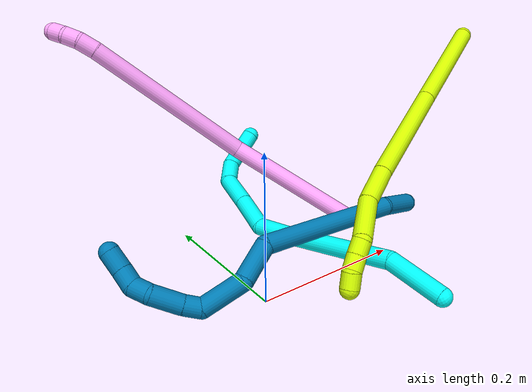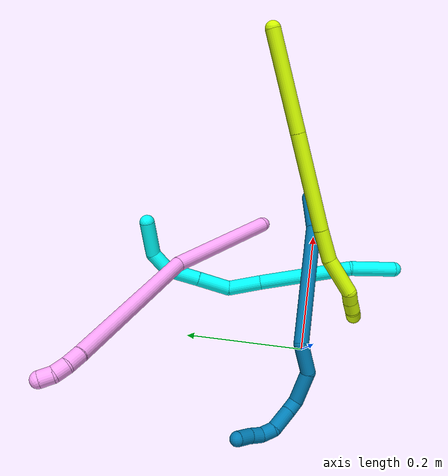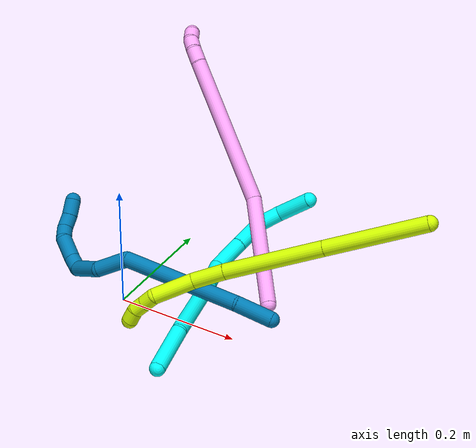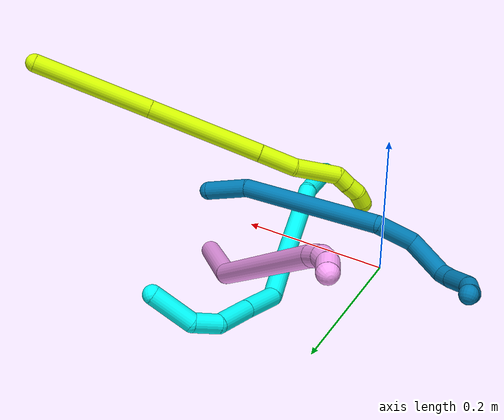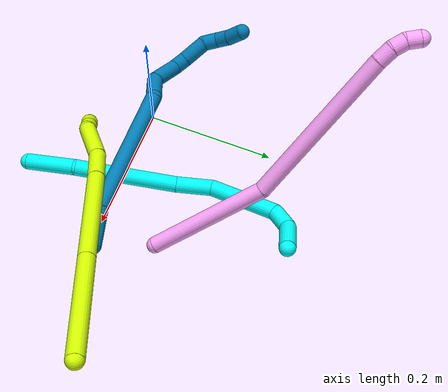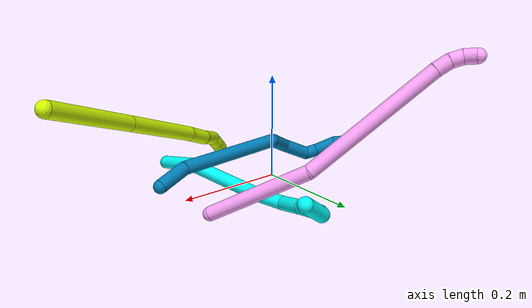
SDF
<sdf version="1.7">
 <world name="default">
  <model name="3">
   <static>0</static>
   <link name="3">
    <collision name="collision-cylinder-e_1_1_4">
     <pose>0.00941 -0.020878 0.018766 0.838635 0.323439 0.145189</pose>
     <geometry><cylinder><radius>0.0125</radius><length>0.059216</length></cylinder></geometry>
     <surface>
      <friction><ode><mu>1.16</mu><mu2>1.16</mu2><slip1>0</slip1><slip2>0</slip2></ode></friction>
      <contact><ode><kp>1e+06</kp><kd>1</kd><max_vel>0</max_vel><min_depth>0.001</min_depth></ode></contact>
     </surface>
    </collision>
    <visual name="visual-cylinder-e_1_1_4">
     <pose>0.00941 -0.020878 0.018766 0.838635 0.323439 0.145189</pose>
     <geometry><cylinder><radius>0.0125</radius><length>0.059216</length></cylinder></geometry>
     <material><ambient>0.003922 1 0.996078 1</ambient></material>
    </visual>
    <collision name="collision-cylinder-e_2_4_5">
     <pose>0.026443 -0.05855 0.039254 1.46858 0.424111 0.383891</pose>
     <geometry><cylinder><radius>0.0125</radius><length>0.037045</length></cylinder></geometry>
     <surface>
      <friction><ode><mu>1.16</mu><mu2>1.16</mu2><slip1>0</slip1><slip2>0</slip2></ode></friction>
      <contact><ode><kp>1e+06</kp><kd>1</kd><max_vel>0</max_vel><min_depth>0.001</min_depth></ode></contact>
     </surface>
    </collision>
    <visual name="visual-cylinder-e_2_4_5">
     <pose>0.026443 -0.05855 0.039254 1.46858 0.424111 0.383891</pose>
     <geometry><cylinder><radius>0.0125</radius><length>0.037045</length></cylinder></geometry>
     <material><ambient>0.003922 1 0.996078 1</ambient></material>
    </visual>
    <collision name="collision-cylinder-e_3_5_6">
     <pose>0.038507 -0.100189 0.030476 1.97067 0.163215 0.245484</pose>
     <geometry><cylinder><radius>0.0125</radius><length>0.054674</length></cylinder></geometry>
     <surface>
      <friction><ode><mu>1.16</mu><mu2>1.16</mu2><slip1>0</slip1><slip2>0</slip2></ode></friction>
      <contact><ode><kp>1e+06</kp><kd>1</kd><max_vel>0</max_vel><min_depth>0.001</min_depth></ode></contact>
     </surface>
    </collision>
    <visual name="visual-cylinder-e_3_5_6">
     <pose>0.038507 -0.100189 0.030476 1.97067 0.163215 0.245484</pose>
     <geometry><cylinder><radius>0.0125</radius><length>0.054674</length></cylinder></geometry>
     <material><ambient>0.003922 1 0.996078 1</ambient></material>
    </visual>
    <collision name="collision-cylinder-e_4_6_7">
     <pose>0.047249 -0.151122 0.009818 1.94211 0.152417 0.222422</pose>
     <geometry><cylinder><radius>0.0125</radius><length>0.056647</length></cylinder></geometry>
     <surface>
      <friction><ode><mu>1.16</mu><mu2>1.16</mu2><slip1>0</slip1><slip2>0</slip2></ode></friction>
      <contact><ode><kp>1e+06</kp><kd>1</kd><max_vel>0</max_vel><min_depth>0.001</min_depth></ode></contact>
     </surface>
    </collision>
    <visual name="visual-cylinder-e_4_6_7">
     <pose>0.047249 -0.151122 0.009818 1.94211 0.152417 0.222422</pose>
     <geometry><cylinder><radius>0.0125</radius><length>0.056647</length></cylinder></geometry>
     <material><ambient>0.003922 1 0.996078 1</ambient></material>
    </visual>
    <collision name="collision-cylinder-e_5_7_8">
     <pose>0.05124 -0.195044 -0.022272 2.45888 -0.010934 -0.030775</pose>
     <geometry><cylinder><radius>0.0125</radius><length>0.05654</length></cylinder></geometry>
     <surface>
      <friction><ode><mu>1.16</mu><mu2>1.16</mu2><slip1>0</slip1><slip2>0</slip2></ode></friction>
      <contact><ode><kp>1e+06</kp><kd>1</kd><max_vel>0</max_vel><min_depth>0.001</min_depth></ode></contact>
     </surface>
    </collision>
    <visual name="visual-cylinder-e_5_7_8">
     <pose>0.05124 -0.195044 -0.022272 2.45888 -0.010934 -0.030775</pose>
     <geometry><cylinder><radius>0.0125</radius><length>0.05654</length></cylinder></geometry>
     <material><ambient>0.003922 1 0.996078 1</ambient></material>
    </visual>
    <collision name="collision-cylinder-e_6_8_9">
     <pose>0.056201 -0.259537 -0.106948 2.50217 0.067301 0.202664</pose>
     <geometry><cylinder><radius>0.0125</radius><length>0.156735</length></cylinder></geometry>
     <surface>
      <friction><ode><mu>1.16</mu><mu2>1.16</mu2><slip1>0</slip1><slip2>0</slip2></ode></friction>
      <contact><ode><kp>1e+06</kp><kd>1</kd><max_vel>0</max_vel><min_depth>0.001</min_depth></ode></contact>
     </surface>
    </collision>
    <visual name="visual-cylinder-e_6_8_9">
     <pose>0.056201 -0.259537 -0.106948 2.50217 0.067301 0.202664</pose>
     <geometry><cylinder><radius>0.0125</radius><length>0.156735</length></cylinder></geometry>
     <material><ambient>0.003922 1 0.996078 1</ambient></material>
    </visual>
    <collision name="collision-cylinder-e_7_9_2">
     <pose>0.060324 -0.339101 -0.191642 2.15909 -0.028998 -0.054192</pose>
     <geometry><cylinder><radius>0.0125</radius><length>0.079144</length></cylinder></geometry>
     <surface>
      <friction><ode><mu>1.16</mu><mu2>1.16</mu2><slip1>0</slip1><slip2>0</slip2></ode></friction>
      <contact><ode><kp>1e+06</kp><kd>1</kd><max_vel>0</max_vel><min_depth>0.001</min_depth></ode></contact>
     </surface>
    </collision>
    <visual name="visual-cylinder-e_7_9_2">
     <pose>0.060324 -0.339101 -0.191642 2.15909 -0.028998 -0.054192</pose>
     <geometry><cylinder><radius>0.0125</radius><length>0.079144</length></cylinder></geometry>
     <material><ambient>0.003922 1 0.996078 1</ambient></material>
    </visual>
    <collision name="collision-sphere-2">
     <pose>0.059177 -0.372006 -0.213592 0 -0 0</pose>
     <geometry><sphere><radius>0.0125</radius></sphere></geometry>
     <surface>
      <friction><ode><mu>1.16</mu><mu2>1.16</mu2><slip1>0</slip1><slip2>0</slip2></ode></friction>
      <contact><ode><kp>1e+06</kp><kd>1</kd><max_vel>0</max_vel><min_depth>0.001</min_depth></ode></contact>
     </surface>
    </collision>
    <visual name="visual-sphere-2">
     <pose>0.059177 -0.372006 -0.213592 0 -0 0</pose>
     <geometry><sphere><radius>0.0125</radius></sphere></geometry>
     <material><ambient>0.003922 1 0.996078 1</ambient></material>
    </visual>
    <collision name="collision-sphere-9">
     <pose>0.061472 -0.306195 -0.169691 0 -0 0</pose>
     <geometry><sphere><radius>0.0125</radius></sphere></geometry>
     <surface>
      <friction><ode><mu>1.16</mu><mu2>1.16</mu2><slip1>0</slip1><slip2>0</slip2></ode></friction>
      <contact><ode><kp>1e+06</kp><kd>1</kd><max_vel>0</max_vel><min_depth>0.001</min_depth></ode></contact>
     </surface>
    </collision>
    <visual name="visual-sphere-9">
     <pose>0.061472 -0.306195 -0.169691 0 -0 0</pose>
     <geometry><sphere><radius>0.0125</radius></sphere></geometry>
     <material><ambient>0.003922 1 0.996078 1</ambient></material>
    </visual>
    <collision name="collision-sphere-4">
     <pose>0.01882 -0.041757 0.037532 0 -0 0</pose>
     <geometry><sphere><radius>0.0125</radius></sphere></geometry>
     <surface>
      <friction><ode><mu>1.16</mu><mu2>1.16</mu2><slip1>0</slip1><slip2>0</slip2></ode></friction>
      <contact><ode><kp>1e+06</kp><kd>1</kd><max_vel>0</max_vel><min_depth>0.001</min_depth></ode></contact>
     </surface>
    </collision>
    <visual name="visual-sphere-4">
     <pose>0.01882 -0.041757 0.037532 0 -0 0</pose>
     <geometry><sphere><radius>0.0125</radius></sphere></geometry>
     <material><ambient>0.003922 1 0.996078 1</ambient></material>
    </visual>
    <collision name="collision-sphere-1">
     <geometry><sphere><radius>0.0125</radius></sphere></geometry>
     <surface>
      <friction><ode><mu>1.16</mu><mu2>1.16</mu2><slip1>0</slip1><slip2>0</slip2></ode></friction>
      <contact><ode><kp>1e+06</kp><kd>1</kd><max_vel>0</max_vel><min_depth>0.001</min_depth></ode></contact>
     </surface>
    </collision>
    <visual name="visual-sphere-1">
     <geometry><sphere><radius>0.0125</radius></sphere></geometry>
     <material><ambient>0.003922 1 0.996078 1</ambient></material>
    </visual>
    <collision name="collision-sphere-8">
     <pose>0.050931 -0.212878 -0.044205 0 -0 0</pose>
     <geometry><sphere><radius>0.0125</radius></sphere></geometry>
     <surface>
      <friction><ode><mu>1.16</mu><mu2>1.16</mu2><slip1>0</slip1><slip2>0</slip2></ode></friction>
      <contact><ode><kp>1e+06</kp><kd>1</kd><max_vel>0</max_vel><min_depth>0.001</min_depth></ode></contact>
     </surface>
    </collision>
    <visual name="visual-sphere-8">
     <pose>0.050931 -0.212878 -0.044205 0 -0 0</pose>
     <geometry><sphere><radius>0.0125</radius></sphere></geometry>
     <material><ambient>0.003922 1 0.996078 1</ambient></material>
    </visual>
    <collision name="collision-sphere-5">
     <pose>0.034065 -0.075344 0.040977 0 -0 0</pose>
     <geometry><sphere><radius>0.0125</radius></sphere></geometry>
     <surface>
      <friction><ode><mu>1.16</mu><mu2>1.16</mu2><slip1>0</slip1><slip2>0</slip2></ode></friction>
      <contact><ode><kp>1e+06</kp><kd>1</kd><max_vel>0</max_vel><min_depth>0.001</min_depth></ode></contact>
     </surface>
    </collision>
    <visual name="visual-sphere-5">
     <pose>0.034065 -0.075344 0.040977 0 -0 0</pose>
     <geometry><sphere><radius>0.0125</radius></sphere></geometry>
     <material><ambient>0.003922 1 0.996078 1</ambient></material>
    </visual>
    <collision name="collision-sphere-6">
     <pose>0.042949 -0.125035 0.019975 0 -0 0</pose>
     <geometry><sphere><radius>0.0125</radius></sphere></geometry>
     <surface>
      <friction><ode><mu>1.16</mu><mu2>1.16</mu2><slip1>0</slip1><slip2>0</slip2></ode></friction>
      <contact><ode><kp>1e+06</kp><kd>1</kd><max_vel>0</max_vel><min_depth>0.001</min_depth></ode></contact>
     </surface>
    </collision>
    <visual name="visual-sphere-6">
     <pose>0.042949 -0.125035 0.019975 0 -0 0</pose>
     <geometry><sphere><radius>0.0125</radius></sphere></geometry>
     <material><ambient>0.003922 1 0.996078 1</ambient></material>
    </visual>
    <collision name="collision-sphere-7">
     <pose>0.051549 -0.177209 -0.00034 0 -0 0</pose>
     <geometry><sphere><radius>0.0125</radius></sphere></geometry>
     <surface>
      <friction><ode><mu>1.16</mu><mu2>1.16</mu2><slip1>0</slip1><slip2>0</slip2></ode></friction>
      <contact><ode><kp>1e+06</kp><kd>1</kd><max_vel>0</max_vel><min_depth>0.001</min_depth></ode></contact>
     </surface>
    </collision>
    <visual name="visual-sphere-7">
     <pose>0.051549 -0.177209 -0.00034 0 -0 0</pose>
     <geometry><sphere><radius>0.0125</radius></sphere></geometry>
     <material><ambient>0.003922 1 0.996078 1</ambient></material>
    </visual>
    <inertial>
     <pose>0.045598 -0.191975 -0.056802 0 -0 0</pose>
     <mass>0.5</mass>
     <inertia>
      <ixx>0.000516</ixx>
      <ixy>0</ixy>
      <ixz>0</ixz>
      <iyy>-0.000242</iyy>
      <iyz>0</iyz>
      <izz>0.000241</izz>
     </inertia>
    </inertial>
   </link>
   <pose>0.173301 0.285597 0.084784 2.33523 -0.631965 -2.90125</pose>
  </model>
  <model name="4">
   <static>0</static>
   <link name="4">
    <collision name="collision-cylinder-e_1_1_4">
     <pose>-0.030344 0.01037 0.087829 -0.117524 -0.330524 0.019623</pose>
     <geometry><cylinder><radius>0.0125</radius><length>0.186999</length></cylinder></geometry>
     <surface>
      <friction><ode><mu>1.16</mu><mu2>1.16</mu2><slip1>0</slip1><slip2>0</slip2></ode></friction>
      <contact><ode><kp>1e+06</kp><kd>1</kd><max_vel>0</max_vel><min_depth>0.001</min_depth></ode></contact>
     </surface>
    </collision>
    <visual name="visual-cylinder-e_1_1_4">
     <pose>-0.030344 0.01037 0.087829 -0.117524 -0.330524 0.019623</pose>
     <geometry><cylinder><radius>0.0125</radius><length>0.186999</length></cylinder></geometry>
     <material><ambient>1 0.65098 0.996078 1</ambient></material>
    </visual>
    <collision name="collision-cylinder-e_2_4_5">
     <pose>-0.103693 0.075078 0.277663 -0.489469 -0.356219 0.089855</pose>
     <geometry><cylinder><radius>0.0125</radius><length>0.246636</length></cylinder></geometry>
     <surface>
      <friction><ode><mu>1.16</mu><mu2>1.16</mu2><slip1>0</slip1><slip2>0</slip2></ode></friction>
      <contact><ode><kp>1e+06</kp><kd>1</kd><max_vel>0</max_vel><min_depth>0.001</min_depth></ode></contact>
     </surface>
    </collision>
    <visual name="visual-cylinder-e_2_4_5">
     <pose>-0.103693 0.075078 0.277663 -0.489469 -0.356219 0.089855</pose>
     <geometry><cylinder><radius>0.0125</radius><length>0.246636</length></cylinder></geometry>
     <material><ambient>1 0.65098 0.996078 1</ambient></material>
    </visual>
    <collision name="collision-cylinder-e_3_5_6">
     <pose>-0.150302 0.133938 0.390871 -0.383582 -0.289933 0.056681</pose>
     <geometry><cylinder><radius>0.0125</radius><length>0.025213</length></cylinder></geometry>
     <surface>
      <friction><ode><mu>1.16</mu><mu2>1.16</mu2><slip1>0</slip1><slip2>0</slip2></ode></friction>
      <contact><ode><kp>1e+06</kp><kd>1</kd><max_vel>0</max_vel><min_depth>0.001</min_depth></ode></contact>
     </surface>
    </collision>
    <visual name="visual-cylinder-e_3_5_6">
     <pose>-0.150302 0.133938 0.390871 -0.383582 -0.289933 0.056681</pose>
     <geometry><cylinder><radius>0.0125</radius><length>0.025213</length></cylinder></geometry>
     <material><ambient>1 0.65098 0.996078 1</ambient></material>
    </visual>
    <collision name="collision-cylinder-e_4_6_7">
     <pose>-0.15542 0.139788 0.412203 -0.13043 -0.147038 0.00962</pose>
     <geometry><cylinder><radius>0.0125</radius><length>0.020656</length></cylinder></geometry>
     <surface>
      <friction><ode><mu>1.16</mu><mu2>1.16</mu2><slip1>0</slip1><slip2>0</slip2></ode></friction>
      <contact><ode><kp>1e+06</kp><kd>1</kd><max_vel>0</max_vel><min_depth>0.001</min_depth></ode></contact>
     </surface>
    </collision>
    <visual name="visual-cylinder-e_4_6_7">
     <pose>-0.15542 0.139788 0.412203 -0.13043 -0.147038 0.00962</pose>
     <geometry><cylinder><radius>0.0125</radius><length>0.020656</length></cylinder></geometry>
     <material><ambient>1 0.65098 0.996078 1</ambient></material>
    </visual>
    <collision name="collision-cylinder-e_5_7_2">
     <pose>-0.158149 0.138682 0.432213 0.24158 -0.118946 -0.014455</pose>
     <geometry><cylinder><radius>0.0125</radius><length>0.020496</length></cylinder></geometry>
     <surface>
      <friction><ode><mu>1.16</mu><mu2>1.16</mu2><slip1>0</slip1><slip2>0</slip2></ode></friction>
      <contact><ode><kp>1e+06</kp><kd>1</kd><max_vel>0</max_vel><min_depth>0.001</min_depth></ode></contact>
     </surface>
    </collision>
    <visual name="visual-cylinder-e_5_7_2">
     <pose>-0.158149 0.138682 0.432213 0.24158 -0.118946 -0.014455</pose>
     <geometry><cylinder><radius>0.0125</radius><length>0.020496</length></cylinder></geometry>
     <material><ambient>1 0.65098 0.996078 1</ambient></material>
    </visual>
    <collision name="collision-sphere-2">
     <pose>-0.159365 0.136248 0.442093 0 -0 0</pose>
     <geometry><sphere><radius>0.0125</radius></sphere></geometry>
     <surface>
      <friction><ode><mu>1.16</mu><mu2>1.16</mu2><slip1>0</slip1><slip2>0</slip2></ode></friction>
      <contact><ode><kp>1e+06</kp><kd>1</kd><max_vel>0</max_vel><min_depth>0.001</min_depth></ode></contact>
     </surface>
    </collision>
    <visual name="visual-sphere-2">
     <pose>-0.159365 0.136248 0.442093 0 -0 0</pose>
     <geometry><sphere><radius>0.0125</radius></sphere></geometry>
     <material><ambient>1 0.65098 0.996078 1</ambient></material>
    </visual>
    <collision name="collision-sphere-7">
     <pose>-0.156933 0.141117 0.422333 0 -0 0</pose>
     <geometry><sphere><radius>0.0125</radius></sphere></geometry>
     <surface>
      <friction><ode><mu>1.16</mu><mu2>1.16</mu2><slip1>0</slip1><slip2>0</slip2></ode></friction>
      <contact><ode><kp>1e+06</kp><kd>1</kd><max_vel>0</max_vel><min_depth>0.001</min_depth></ode></contact>
     </surface>
    </collision>
    <visual name="visual-sphere-7">
     <pose>-0.156933 0.141117 0.422333 0 -0 0</pose>
     <geometry><sphere><radius>0.0125</radius></sphere></geometry>
     <material><ambient>1 0.65098 0.996078 1</ambient></material>
    </visual>
    <collision name="collision-sphere-6">
     <pose>-0.153906 0.138459 0.402073 0 -0 0</pose>
     <geometry><sphere><radius>0.0125</radius></sphere></geometry>
     <surface>
      <friction><ode><mu>1.16</mu><mu2>1.16</mu2><slip1>0</slip1><slip2>0</slip2></ode></friction>
      <contact><ode><kp>1e+06</kp><kd>1</kd><max_vel>0</max_vel><min_depth>0.001</min_depth></ode></contact>
     </surface>
    </collision>
    <visual name="visual-sphere-6">
     <pose>-0.153906 0.138459 0.402073 0 -0 0</pose>
     <geometry><sphere><radius>0.0125</radius></sphere></geometry>
     <material><ambient>1 0.65098 0.996078 1</ambient></material>
    </visual>
    <collision name="collision-sphere-5">
     <pose>-0.146698 0.129417 0.379668 0 -0 0</pose>
     <geometry><sphere><radius>0.0125</radius></sphere></geometry>
     <surface>
      <friction><ode><mu>1.16</mu><mu2>1.16</mu2><slip1>0</slip1><slip2>0</slip2></ode></friction>
      <contact><ode><kp>1e+06</kp><kd>1</kd><max_vel>0</max_vel><min_depth>0.001</min_depth></ode></contact>
     </surface>
    </collision>
    <visual name="visual-sphere-5">
     <pose>-0.146698 0.129417 0.379668 0 -0 0</pose>
     <geometry><sphere><radius>0.0125</radius></sphere></geometry>
     <material><ambient>1 0.65098 0.996078 1</ambient></material>
    </visual>
    <collision name="collision-sphere-1">
     <geometry><sphere><radius>0.0125</radius></sphere></geometry>
     <surface>
      <friction><ode><mu>1.16</mu><mu2>1.16</mu2><slip1>0</slip1><slip2>0</slip2></ode></friction>
      <contact><ode><kp>1e+06</kp><kd>1</kd><max_vel>0</max_vel><min_depth>0.001</min_depth></ode></contact>
     </surface>
    </collision>
    <visual name="visual-sphere-1">
     <geometry><sphere><radius>0.0125</radius></sphere></geometry>
     <material><ambient>1 0.65098 0.996078 1</ambient></material>
    </visual>
    <collision name="collision-sphere-4">
     <pose>-0.060688 0.020739 0.175657 0 -0 0</pose>
     <geometry><sphere><radius>0.0125</radius></sphere></geometry>
     <surface>
      <friction><ode><mu>1.16</mu><mu2>1.16</mu2><slip1>0</slip1><slip2>0</slip2></ode></friction>
      <contact><ode><kp>1e+06</kp><kd>1</kd><max_vel>0</max_vel><min_depth>0.001</min_depth></ode></contact>
     </surface>
    </collision>
    <visual name="visual-sphere-4">
     <pose>-0.060688 0.020739 0.175657 0 -0 0</pose>
     <geometry><sphere><radius>0.0125</radius></sphere></geometry>
     <material><ambient>1 0.65098 0.996078 1</ambient></material>
    </visual>
    <inertial>
     <pose>-0.08298 0.059126 0.224267 0 -0 0</pose>
     <mass>0.5</mass>
     <inertia>
      <ixx>0.001807</ixx>
      <ixy>0</ixy>
      <ixz>0</ixz>
      <iyy>0.001807</iyy>
      <iyz>0</iyz>
      <izz>3.7e-05</izz>
     </inertia>
    </inertial>
   </link>
   <pose>0.209492 0.0933 0.011499 1.26757 1.05764 -2.67439</pose>
  </model>
  <model name="9">
   <static>0</static>
   <link name="9">
    <collision name="collision-cylinder-e_1_1_4">
     <pose>-0.028641 -0.00335 -0.006104 2.63963 -1.33231 -2.51098</pose>
     <geometry><cylinder><radius>0.0125</radius><length>0.058951</length></cylinder></geometry>
     <surface>
      <friction><ode><mu>1.16</mu><mu2>1.16</mu2><slip1>0</slip1><slip2>0</slip2></ode></friction>
      <contact><ode><kp>1e+06</kp><kd>1</kd><max_vel>0</max_vel><min_depth>0.001</min_depth></ode></contact>
     </surface>
    </collision>
    <visual name="visual-cylinder-e_1_1_4">
     <pose>-0.028641 -0.00335 -0.006104 2.63963 -1.33231 -2.51098</pose>
     <geometry><cylinder><radius>0.0125</radius><length>0.058951</length></cylinder></geometry>
     <material><ambient>0 0.490196 0.709804 1</ambient></material>
    </visual>
    <collision name="collision-cylinder-e_2_4_5">
     <pose>-0.156042 -0.009923 -0.002984 0.336044 -1.47218 -0.304951</pose>
     <geometry><cylinder><radius>0.0125</radius><length>0.198483</length></cylinder></geometry>
     <surface>
      <friction><ode><mu>1.16</mu><mu2>1.16</mu2><slip1>0</slip1><slip2>0</slip2></ode></friction>
      <contact><ode><kp>1e+06</kp><kd>1</kd><max_vel>0</max_vel><min_depth>0.001</min_depth></ode></contact>
     </surface>
    </collision>
    <visual name="visual-cylinder-e_2_4_5">
     <pose>-0.156042 -0.009923 -0.002984 0.336044 -1.47218 -0.304951</pose>
     <geometry><cylinder><radius>0.0125</radius><length>0.198483</length></cylinder></geometry>
     <material><ambient>0 0.490196 0.709804 1</ambient></material>
    </visual>
    <collision name="collision-cylinder-e_3_5_6">
     <pose>-0.276179 0.001903 0.007873 -1.46272 -0.954695 0.86913</pose>
     <geometry><cylinder><radius>0.0125</radius><length>0.052387</length></cylinder></geometry>
     <surface>
      <friction><ode><mu>1.16</mu><mu2>1.16</mu2><slip1>0</slip1><slip2>0</slip2></ode></friction>
      <contact><ode><kp>1e+06</kp><kd>1</kd><max_vel>0</max_vel><min_depth>0.001</min_depth></ode></contact>
     </surface>
    </collision>
    <visual name="visual-cylinder-e_3_5_6">
     <pose>-0.276179 0.001903 0.007873 -1.46272 -0.954695 0.86913</pose>
     <geometry><cylinder><radius>0.0125</radius><length>0.052387</length></cylinder></geometry>
     <material><ambient>0 0.490196 0.709804 1</ambient></material>
    </visual>
    <collision name="collision-cylinder-e_4_6_7">
     <pose>-0.320465 0.023722 0.024533 -0.423333 -0.947102 0.219348</pose>
     <geometry><cylinder><radius>0.0125</radius><length>0.056443</length></cylinder></geometry>
     <surface>
      <friction><ode><mu>1.16</mu><mu2>1.16</mu2><slip1>0</slip1><slip2>0</slip2></ode></friction>
      <contact><ode><kp>1e+06</kp><kd>1</kd><max_vel>0</max_vel><min_depth>0.001</min_depth></ode></contact>
     </surface>
    </collision>
    <visual name="visual-cylinder-e_4_6_7">
     <pose>-0.320465 0.023722 0.024533 -0.423333 -0.947102 0.219348</pose>
     <geometry><cylinder><radius>0.0125</radius><length>0.056443</length></cylinder></geometry>
     <material><ambient>0 0.490196 0.709804 1</ambient></material>
    </visual>
    <collision name="collision-cylinder-e_5_7_8">
     <pose>-0.351956 0.025027 0.043832 0.907455 -0.891043 -0.457602</pose>
     <geometry><cylinder><radius>0.0125</radius><length>0.022072</length></cylinder></geometry>
     <surface>
      <friction><ode><mu>1.16</mu><mu2>1.16</mu2><slip1>0</slip1><slip2>0</slip2></ode></friction>
      <contact><ode><kp>1e+06</kp><kd>1</kd><max_vel>0</max_vel><min_depth>0.001</min_depth></ode></contact>
     </surface>
    </collision>
    <visual name="visual-cylinder-e_5_7_8">
     <pose>-0.351956 0.025027 0.043832 0.907455 -0.891043 -0.457602</pose>
     <geometry><cylinder><radius>0.0125</radius><length>0.022072</length></cylinder></geometry>
     <material><ambient>0 0.490196 0.709804 1</ambient></material>
    </visual>
    <collision name="collision-cylinder-e_6_8_9">
     <pose>-0.375211 0.007502 0.054322 1.09474 -0.824438 -0.520918</pose>
     <geometry><cylinder><radius>0.0125</radius><length>0.039967</length></cylinder></geometry>
     <surface>
      <friction><ode><mu>1.16</mu><mu2>1.16</mu2><slip1>0</slip1><slip2>0</slip2></ode></friction>
      <contact><ode><kp>1e+06</kp><kd>1</kd><max_vel>0</max_vel><min_depth>0.001</min_depth></ode></contact>
     </surface>
    </collision>
    <visual name="visual-cylinder-e_6_8_9">
     <pose>-0.375211 0.007502 0.054322 1.09474 -0.824438 -0.520918</pose>
     <geometry><cylinder><radius>0.0125</radius><length>0.039967</length></cylinder></geometry>
     <material><ambient>0 0.490196 0.709804 1</ambient></material>
    </visual>
    <collision name="collision-cylinder-e_7_9_10">
     <pose>-0.394627 -0.011724 0.067902 0.771891 -0.432656 -0.17812</pose>
     <geometry><cylinder><radius>0.0125</radius><length>0.022633</length></cylinder></geometry>
     <surface>
      <friction><ode><mu>1.16</mu><mu2>1.16</mu2><slip1>0</slip1><slip2>0</slip2></ode></friction>
      <contact><ode><kp>1e+06</kp><kd>1</kd><max_vel>0</max_vel><min_depth>0.001</min_depth></ode></contact>
     </surface>
    </collision>
    <visual name="visual-cylinder-e_7_9_10">
     <pose>-0.394627 -0.011724 0.067902 0.771891 -0.432656 -0.17812</pose>
     <geometry><cylinder><radius>0.0125</radius><length>0.022633</length></cylinder></geometry>
     <material><ambient>0 0.490196 0.709804 1</ambient></material>
    </visual>
    <collision name="collision-cylinder-e_8_10_11">
     <pose>-0.40051 -0.029332 0.079657 1.17264 -0.100187 -0.06658</pose>
     <geometry><cylinder><radius>0.0125</radius><length>0.022771</length></cylinder></geometry>
     <surface>
      <friction><ode><mu>1.16</mu><mu2>1.16</mu2><slip1>0</slip1><slip2>0</slip2></ode></friction>
      <contact><ode><kp>1e+06</kp><kd>1</kd><max_vel>0</max_vel><min_depth>0.001</min_depth></ode></contact>
     </surface>
    </collision>
    <visual name="visual-cylinder-e_8_10_11">
     <pose>-0.40051 -0.029332 0.079657 1.17264 -0.100187 -0.06658</pose>
     <geometry><cylinder><radius>0.0125</radius><length>0.022771</length></cylinder></geometry>
     <material><ambient>0 0.490196 0.709804 1</ambient></material>
    </visual>
    <collision name="collision-cylinder-e_9_11_2">
     <pose>-0.404208 -0.052181 0.087562 1.29486 -0.195892 -0.148328</pose>
     <geometry><cylinder><radius>0.0125</radius><length>0.026292</length></cylinder></geometry>
     <surface>
      <friction><ode><mu>1.16</mu><mu2>1.16</mu2><slip1>0</slip1><slip2>0</slip2></ode></friction>
      <contact><ode><kp>1e+06</kp><kd>1</kd><max_vel>0</max_vel><min_depth>0.001</min_depth></ode></contact>
     </surface>
    </collision>
    <visual name="visual-cylinder-e_9_11_2">
     <pose>-0.404208 -0.052181 0.087562 1.29486 -0.195892 -0.148328</pose>
     <geometry><cylinder><radius>0.0125</radius><length>0.026292</length></cylinder></geometry>
     <material><ambient>0 0.490196 0.709804 1</ambient></material>
    </visual>
    <collision name="collision-sphere-2">
     <pose>-0.406767 -0.064588 0.091075 0 -0 0</pose>
     <geometry><sphere><radius>0.0125</radius></sphere></geometry>
     <surface>
      <friction><ode><mu>1.16</mu><mu2>1.16</mu2><slip1>0</slip1><slip2>0</slip2></ode></friction>
      <contact><ode><kp>1e+06</kp><kd>1</kd><max_vel>0</max_vel><min_depth>0.001</min_depth></ode></contact>
     </surface>
    </collision>
    <visual name="visual-sphere-2">
     <pose>-0.406767 -0.064588 0.091075 0 -0 0</pose>
     <geometry><sphere><radius>0.0125</radius></sphere></geometry>
     <material><ambient>0 0.490196 0.709804 1</ambient></material>
    </visual>
    <collision name="collision-sphere-11">
     <pose>-0.401649 -0.039774 0.084049 0 -0 0</pose>
     <geometry><sphere><radius>0.0125</radius></sphere></geometry>
     <surface>
      <friction><ode><mu>1.16</mu><mu2>1.16</mu2><slip1>0</slip1><slip2>0</slip2></ode></friction>
      <contact><ode><kp>1e+06</kp><kd>1</kd><max_vel>0</max_vel><min_depth>0.001</min_depth></ode></contact>
     </surface>
    </collision>
    <visual name="visual-sphere-11">
     <pose>-0.401649 -0.039774 0.084049 0 -0 0</pose>
     <geometry><sphere><radius>0.0125</radius></sphere></geometry>
     <material><ambient>0 0.490196 0.709804 1</ambient></material>
    </visual>
    <collision name="collision-sphere-10">
     <pose>-0.399372 -0.01889 0.075265 0 -0 0</pose>
     <geometry><sphere><radius>0.0125</radius></sphere></geometry>
     <surface>
      <friction><ode><mu>1.16</mu><mu2>1.16</mu2><slip1>0</slip1><slip2>0</slip2></ode></friction>
      <contact><ode><kp>1e+06</kp><kd>1</kd><max_vel>0</max_vel><min_depth>0.001</min_depth></ode></contact>
     </surface>
    </collision>
    <visual name="visual-sphere-10">
     <pose>-0.399372 -0.01889 0.075265 0 -0 0</pose>
     <geometry><sphere><radius>0.0125</radius></sphere></geometry>
     <material><ambient>0 0.490196 0.709804 1</ambient></material>
    </visual>
    <collision name="collision-sphere-9">
     <pose>-0.389882 -0.004558 0.06054 0 -0 0</pose>
     <geometry><sphere><radius>0.0125</radius></sphere></geometry>
     <surface>
      <friction><ode><mu>1.16</mu><mu2>1.16</mu2><slip1>0</slip1><slip2>0</slip2></ode></friction>
      <contact><ode><kp>1e+06</kp><kd>1</kd><max_vel>0</max_vel><min_depth>0.001</min_depth></ode></contact>
     </surface>
    </collision>
    <visual name="visual-sphere-9">
     <pose>-0.389882 -0.004558 0.06054 0 -0 0</pose>
     <geometry><sphere><radius>0.0125</radius></sphere></geometry>
     <material><ambient>0 0.490196 0.709804 1</ambient></material>
    </visual>
    <collision name="collision-sphere-4">
     <pose>-0.057283 -0.006701 -0.012208 0 -0 0</pose>
     <geometry><sphere><radius>0.0125</radius></sphere></geometry>
     <surface>
      <friction><ode><mu>1.16</mu><mu2>1.16</mu2><slip1>0</slip1><slip2>0</slip2></ode></friction>
      <contact><ode><kp>1e+06</kp><kd>1</kd><max_vel>0</max_vel><min_depth>0.001</min_depth></ode></contact>
     </surface>
    </collision>
    <visual name="visual-sphere-4">
     <pose>-0.057283 -0.006701 -0.012208 0 -0 0</pose>
     <geometry><sphere><radius>0.0125</radius></sphere></geometry>
     <material><ambient>0 0.490196 0.709804 1</ambient></material>
    </visual>
    <collision name="collision-sphere-1">
     <geometry><sphere><radius>0.0125</radius></sphere></geometry>
     <surface>
      <friction><ode><mu>1.16</mu><mu2>1.16</mu2><slip1>0</slip1><slip2>0</slip2></ode></friction>
      <contact><ode><kp>1e+06</kp><kd>1</kd><max_vel>0</max_vel><min_depth>0.001</min_depth></ode></contact>
     </surface>
    </collision>
    <visual name="visual-sphere-1">
     <geometry><sphere><radius>0.0125</radius></sphere></geometry>
     <material><ambient>0 0.490196 0.709804 1</ambient></material>
    </visual>
    <collision name="collision-sphere-8">
     <pose>-0.360539 0.019561 0.048104 0 -0 0</pose>
     <geometry><sphere><radius>0.0125</radius></sphere></geometry>
     <surface>
      <friction><ode><mu>1.16</mu><mu2>1.16</mu2><slip1>0</slip1><slip2>0</slip2></ode></friction>
      <contact><ode><kp>1e+06</kp><kd>1</kd><max_vel>0</max_vel><min_depth>0.001</min_depth></ode></contact>
     </surface>
    </collision>
    <visual name="visual-sphere-8">
     <pose>-0.360539 0.019561 0.048104 0 -0 0</pose>
     <geometry><sphere><radius>0.0125</radius></sphere></geometry>
     <material><ambient>0 0.490196 0.709804 1</ambient></material>
    </visual>
    <collision name="collision-sphere-5">
     <pose>-0.254802 -0.013145 0.00624 0 -0 0</pose>
     <geometry><sphere><radius>0.0125</radius></sphere></geometry>
     <surface>
      <friction><ode><mu>1.16</mu><mu2>1.16</mu2><slip1>0</slip1><slip2>0</slip2></ode></friction>
      <contact><ode><kp>1e+06</kp><kd>1</kd><max_vel>0</max_vel><min_depth>0.001</min_depth></ode></contact>
     </surface>
    </collision>
    <visual name="visual-sphere-5">
     <pose>-0.254802 -0.013145 0.00624 0 -0 0</pose>
     <geometry><sphere><radius>0.0125</radius></sphere></geometry>
     <material><ambient>0 0.490196 0.709804 1</ambient></material>
    </visual>
    <collision name="collision-sphere-6">
     <pose>-0.297557 0.016951 0.009506 0 -0 0</pose>
     <geometry><sphere><radius>0.0125</radius></sphere></geometry>
     <surface>
      <friction><ode><mu>1.16</mu><mu2>1.16</mu2><slip1>0</slip1><slip2>0</slip2></ode></friction>
      <contact><ode><kp>1e+06</kp><kd>1</kd><max_vel>0</max_vel><min_depth>0.001</min_depth></ode></contact>
     </surface>
    </collision>
    <visual name="visual-sphere-6">
     <pose>-0.297557 0.016951 0.009506 0 -0 0</pose>
     <geometry><sphere><radius>0.0125</radius></sphere></geometry>
     <material><ambient>0 0.490196 0.709804 1</ambient></material>
    </visual>
    <collision name="collision-sphere-7">
     <pose>-0.343374 0.030493 0.039561 0 -0 0</pose>
     <geometry><sphere><radius>0.0125</radius></sphere></geometry>
     <surface>
      <friction><ode><mu>1.16</mu><mu2>1.16</mu2><slip1>0</slip1><slip2>0</slip2></ode></friction>
      <contact><ode><kp>1e+06</kp><kd>1</kd><max_vel>0</max_vel><min_depth>0.001</min_depth></ode></contact>
     </surface>
    </collision>
    <visual name="visual-sphere-7">
     <pose>-0.343374 0.030493 0.039561 0 -0 0</pose>
     <geometry><sphere><radius>0.0125</radius></sphere></geometry>
     <material><ambient>0 0.490196 0.709804 1</ambient></material>
    </visual>
    <inertial>
     <pose>-0.23332 -0.004363 0.019273 0 -0 0</pose>
     <mass>0.5</mass>
     <inertia>
      <ixx>3.5e-05</ixx>
      <ixy>0</ixy>
      <ixz>0</ixz>
      <iyy>0.000691</iyy>
      <iyz>0</iyz>
      <izz>0.000737</izz>
     </inertia>
    </inertial>
   </link>
   <pose>0.25829 0.018193 0.048421 -2.15681 0.07585 0.091022</pose>
  </model>
  <model name="15">
   <static>0</static>
   <link name="15">
    <collision name="collision-cylinder-e_1_1_4">
     <pose>-0.030399 -0.009527 -0.075551 3.01616 -0.379818 -2.51006</pose>
     <geometry><cylinder><radius>0.0125</radius><length>0.163986</length></cylinder></geometry>
     <surface>
      <friction><ode><mu>1.16</mu><mu2>1.16</mu2><slip1>0</slip1><slip2>0</slip2></ode></friction>
      <contact><ode><kp>1e+06</kp><kd>1</kd><max_vel>0</max_vel><min_depth>0.001</min_depth></ode></contact>
     </surface>
    </collision>
    <visual name="visual-cylinder-e_1_1_4">
     <pose>-0.030399 -0.009527 -0.075551 3.01616 -0.379818 -2.51006</pose>
     <geometry><cylinder><radius>0.0125</radius><length>0.163986</length></cylinder></geometry>
     <material><ambient>0.835294 1 0 1</ambient></material>
    </visual>
    <collision name="collision-cylinder-e_2_4_5">
     <pose>-0.090113 -0.028247 -0.224562 3.01708 -0.377031 -2.50999</pose>
     <geometry><cylinder><radius>0.0125</radius><length>0.159251</length></cylinder></geometry>
     <surface>
      <friction><ode><mu>1.16</mu><mu2>1.16</mu2><slip1>0</slip1><slip2>0</slip2></ode></friction>
      <contact><ode><kp>1e+06</kp><kd>1</kd><max_vel>0</max_vel><min_depth>0.001</min_depth></ode></contact>
     </surface>
    </collision>
    <visual name="visual-cylinder-e_2_4_5">
     <pose>-0.090113 -0.028247 -0.224562 3.01708 -0.377031 -2.50999</pose>
     <geometry><cylinder><radius>0.0125</radius><length>0.159251</length></cylinder></geometry>
     <material><ambient>0.835294 1 0 1</ambient></material>
    </visual>
    <collision name="collision-cylinder-e_3_5_6">
     <pose>-0.128017 -0.041495 -0.322346 2.97645 -0.335158 -2.23162</pose>
     <geometry><cylinder><radius>0.0125</radius><length>0.052225</length></cylinder></geometry>
     <surface>
      <friction><ode><mu>1.16</mu><mu2>1.16</mu2><slip1>0</slip1><slip2>0</slip2></ode></friction>
      <contact><ode><kp>1e+06</kp><kd>1</kd><max_vel>0</max_vel><min_depth>0.001</min_depth></ode></contact>
     </surface>
    </collision>
    <visual name="visual-cylinder-e_3_5_6">
     <pose>-0.128017 -0.041495 -0.322346 2.97645 -0.335158 -2.23162</pose>
     <geometry><cylinder><radius>0.0125</radius><length>0.052225</length></cylinder></geometry>
     <material><ambient>0.835294 1 0 1</ambient></material>
    </visual>
    <collision name="collision-cylinder-e_4_6_7">
     <pose>-0.147385 -0.058758 -0.373899 2.68992 -0.342171 -1.28956</pose>
     <geometry><cylinder><radius>0.0125</radius><length>0.064252</length></cylinder></geometry>
     <surface>
      <friction><ode><mu>1.16</mu><mu2>1.16</mu2><slip1>0</slip1><slip2>0</slip2></ode></friction>
      <contact><ode><kp>1e+06</kp><kd>1</kd><max_vel>0</max_vel><min_depth>0.001</min_depth></ode></contact>
     </surface>
    </collision>
    <visual name="visual-cylinder-e_4_6_7">
     <pose>-0.147385 -0.058758 -0.373899 2.68992 -0.342171 -1.28956</pose>
     <geometry><cylinder><radius>0.0125</radius><length>0.064252</length></cylinder></geometry>
     <material><ambient>0.835294 1 0 1</ambient></material>
    </visual>
    <collision name="collision-cylinder-e_5_7_8">
     <pose>-0.157696 -0.072713 -0.411132 3.0672 0.046719 1.12124</pose>
     <geometry><cylinder><radius>0.0125</radius><length>0.020086</length></cylinder></geometry>
     <surface>
      <friction><ode><mu>1.16</mu><mu2>1.16</mu2><slip1>0</slip1><slip2>0</slip2></ode></friction>
      <contact><ode><kp>1e+06</kp><kd>1</kd><max_vel>0</max_vel><min_depth>0.001</min_depth></ode></contact>
     </surface>
    </collision>
    <visual name="visual-cylinder-e_5_7_8">
     <pose>-0.157696 -0.072713 -0.411132 3.0672 0.046719 1.12124</pose>
     <geometry><cylinder><radius>0.0125</radius><length>0.020086</length></cylinder></geometry>
     <material><ambient>0.835294 1 0 1</ambient></material>
    </visual>
    <collision name="collision-cylinder-e_6_8_9">
     <pose>-0.157086 -0.074931 -0.431057 2.99421 0.013973 0.188717</pose>
     <geometry><cylinder><radius>0.0125</radius><length>0.020061</length></cylinder></geometry>
     <surface>
      <friction><ode><mu>1.16</mu><mu2>1.16</mu2><slip1>0</slip1><slip2>0</slip2></ode></friction>
      <contact><ode><kp>1e+06</kp><kd>1</kd><max_vel>0</max_vel><min_depth>0.001</min_depth></ode></contact>
     </surface>
    </collision>
    <visual name="visual-cylinder-e_6_8_9">
     <pose>-0.157086 -0.074931 -0.431057 2.99421 0.013973 0.188717</pose>
     <geometry><cylinder><radius>0.0125</radius><length>0.020061</length></cylinder></geometry>
     <material><ambient>0.835294 1 0 1</ambient></material>
    </visual>
    <collision name="collision-cylinder-e_7_9_2">
     <pose>-0.153141 -0.077693 -0.450211 3.00289 0.387541 2.46116</pose>
     <geometry><cylinder><radius>0.0125</radius><length>0.020139</length></cylinder></geometry>
     <surface>
      <friction><ode><mu>1.16</mu><mu2>1.16</mu2><slip1>0</slip1><slip2>0</slip2></ode></friction>
      <contact><ode><kp>1e+06</kp><kd>1</kd><max_vel>0</max_vel><min_depth>0.001</min_depth></ode></contact>
     </surface>
    </collision>
    <visual name="visual-cylinder-e_7_9_2">
     <pose>-0.153141 -0.077693 -0.450211 3.00289 0.387541 2.46116</pose>
     <geometry><cylinder><radius>0.0125</radius><length>0.020139</length></cylinder></geometry>
     <material><ambient>0.835294 1 0 1</ambient></material>
    </visual>
    <collision name="collision-sphere-2">
     <pose>-0.149335 -0.078982 -0.459444 0 -0 0</pose>
     <geometry><sphere><radius>0.0125</radius></sphere></geometry>
     <surface>
      <friction><ode><mu>1.16</mu><mu2>1.16</mu2><slip1>0</slip1><slip2>0</slip2></ode></friction>
      <contact><ode><kp>1e+06</kp><kd>1</kd><max_vel>0</max_vel><min_depth>0.001</min_depth></ode></contact>
     </surface>
    </collision>
    <visual name="visual-sphere-2">
     <pose>-0.149335 -0.078982 -0.459444 0 -0 0</pose>
     <geometry><sphere><radius>0.0125</radius></sphere></geometry>
     <material><ambient>0.835294 1 0 1</ambient></material>
    </visual>
    <collision name="collision-sphere-9">
     <pose>-0.156946 -0.076404 -0.440978 0 -0 0</pose>
     <geometry><sphere><radius>0.0125</radius></sphere></geometry>
     <surface>
      <friction><ode><mu>1.16</mu><mu2>1.16</mu2><slip1>0</slip1><slip2>0</slip2></ode></friction>
      <contact><ode><kp>1e+06</kp><kd>1</kd><max_vel>0</max_vel><min_depth>0.001</min_depth></ode></contact>
     </surface>
    </collision>
    <visual name="visual-sphere-9">
     <pose>-0.156946 -0.076404 -0.440978 0 -0 0</pose>
     <geometry><sphere><radius>0.0125</radius></sphere></geometry>
     <material><ambient>0.835294 1 0 1</ambient></material>
    </visual>
    <collision name="collision-sphere-4">
     <pose>-0.060798 -0.019053 -0.151102 0 -0 0</pose>
     <geometry><sphere><radius>0.0125</radius></sphere></geometry>
     <surface>
      <friction><ode><mu>1.16</mu><mu2>1.16</mu2><slip1>0</slip1><slip2>0</slip2></ode></friction>
      <contact><ode><kp>1e+06</kp><kd>1</kd><max_vel>0</max_vel><min_depth>0.001</min_depth></ode></contact>
     </surface>
    </collision>
    <visual name="visual-sphere-4">
     <pose>-0.060798 -0.019053 -0.151102 0 -0 0</pose>
     <geometry><sphere><radius>0.0125</radius></sphere></geometry>
     <material><ambient>0.835294 1 0 1</ambient></material>
    </visual>
    <collision name="collision-sphere-1">
     <geometry><sphere><radius>0.0125</radius></sphere></geometry>
     <surface>
      <friction><ode><mu>1.16</mu><mu2>1.16</mu2><slip1>0</slip1><slip2>0</slip2></ode></friction>
      <contact><ode><kp>1e+06</kp><kd>1</kd><max_vel>0</max_vel><min_depth>0.001</min_depth></ode></contact>
     </surface>
    </collision>
    <visual name="visual-sphere-1">
     <geometry><sphere><radius>0.0125</radius></sphere></geometry>
     <material><ambient>0.835294 1 0 1</ambient></material>
    </visual>
    <collision name="collision-sphere-8">
     <pose>-0.157227 -0.073459 -0.421136 0 -0 0</pose>
     <geometry><sphere><radius>0.0125</radius></sphere></geometry>
     <surface>
      <friction><ode><mu>1.16</mu><mu2>1.16</mu2><slip1>0</slip1><slip2>0</slip2></ode></friction>
      <contact><ode><kp>1e+06</kp><kd>1</kd><max_vel>0</max_vel><min_depth>0.001</min_depth></ode></contact>
     </surface>
    </collision>
    <visual name="visual-sphere-8">
     <pose>-0.157227 -0.073459 -0.421136 0 -0 0</pose>
     <geometry><sphere><radius>0.0125</radius></sphere></geometry>
     <material><ambient>0.835294 1 0 1</ambient></material>
    </visual>
    <collision name="collision-sphere-5">
     <pose>-0.119428 -0.037441 -0.298022 0 -0 0</pose>
     <geometry><sphere><radius>0.0125</radius></sphere></geometry>
     <surface>
      <friction><ode><mu>1.16</mu><mu2>1.16</mu2><slip1>0</slip1><slip2>0</slip2></ode></friction>
      <contact><ode><kp>1e+06</kp><kd>1</kd><max_vel>0</max_vel><min_depth>0.001</min_depth></ode></contact>
     </surface>
    </collision>
    <visual name="visual-sphere-5">
     <pose>-0.119428 -0.037441 -0.298022 0 -0 0</pose>
     <geometry><sphere><radius>0.0125</radius></sphere></geometry>
     <material><ambient>0.835294 1 0 1</ambient></material>
    </visual>
    <collision name="collision-sphere-6">
     <pose>-0.136606 -0.045549 -0.34667 0 -0 0</pose>
     <geometry><sphere><radius>0.0125</radius></sphere></geometry>
     <surface>
      <friction><ode><mu>1.16</mu><mu2>1.16</mu2><slip1>0</slip1><slip2>0</slip2></ode></friction>
      <contact><ode><kp>1e+06</kp><kd>1</kd><max_vel>0</max_vel><min_depth>0.001</min_depth></ode></contact>
     </surface>
    </collision>
    <visual name="visual-sphere-6">
     <pose>-0.136606 -0.045549 -0.34667 0 -0 0</pose>
     <geometry><sphere><radius>0.0125</radius></sphere></geometry>
     <material><ambient>0.835294 1 0 1</ambient></material>
    </visual>
    <collision name="collision-sphere-7">
     <pose>-0.158165 -0.071967 -0.401128 0 -0 0</pose>
     <geometry><sphere><radius>0.0125</radius></sphere></geometry>
     <surface>
      <friction><ode><mu>1.16</mu><mu2>1.16</mu2><slip1>0</slip1><slip2>0</slip2></ode></friction>
      <contact><ode><kp>1e+06</kp><kd>1</kd><max_vel>0</max_vel><min_depth>0.001</min_depth></ode></contact>
     </surface>
    </collision>
    <visual name="visual-sphere-7">
     <pose>-0.158165 -0.071967 -0.401128 0 -0 0</pose>
     <geometry><sphere><radius>0.0125</radius></sphere></geometry>
     <material><ambient>0.835294 1 0 1</ambient></material>
    </visual>
    <inertial>
     <pose>-0.089788 -0.033063 -0.229963 0 -0 0</pose>
     <mass>0.5</mass>
     <inertia>
      <ixx>-0.000973</ixx>
      <ixy>0</ixy>
      <ixz>0</ixz>
      <iyy>0.000169</iyy>
      <iyz>0</iyz>
      <izz>0.000337</izz>
     </inertia>
    </inertial>
   </link>
   <pose>0.465833 0.114307 0.239904 -0.043219 0.813549 0.224417</pose>
  </model>
 </world>
</sdf>
